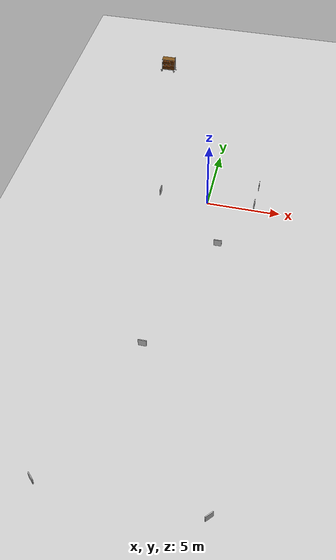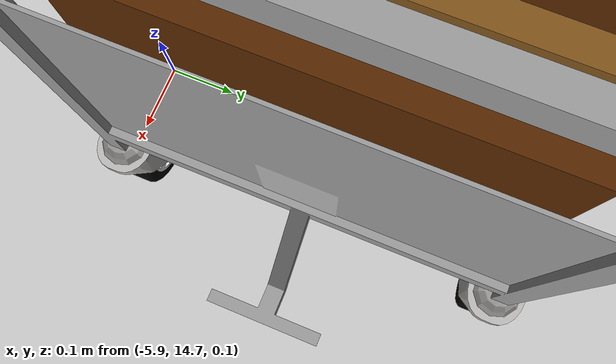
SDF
<sdf version="1.9">
 <world name="empty">
  <physics name="1ms" type="ode">
   <max_step_size>0.01</max_step_size>
   <real_time_factor>1.0</real_time_factor>
   <ode><solver><type>world</type></solver></ode>
  </physics>
  <plugin filename="ignition-gazebo-physics-system" name="gz::sim::systems::Physics"/>
  <plugin filename="ignition-gazebo-user-commands-system" name="gz::sim::systems::UserCommands"/>
  <plugin filename="ignition-gazebo-scene-broadcaster-system" name="gz::sim::systems::SceneBroadcaster"/>
  <plugin filename="ignition-gazebo-contact-system" name="gz::sim::systems::Contact"/>
  <light type="directional" name="sun">
   <cast_shadows>0</cast_shadows>
   <pose>-5 -3 10 0 0 0</pose>
   <diffuse>1 1 1 1</diffuse>
   <specular>1 1 1 1</specular>
   <direction>0 0 -1</direction>
  </light>
  <model name="sueloWorld2">
   <static>true</static>
   <link name="link">
    <collision name="collision">
     <geometry><plane><normal>0 0 1</normal><size>100 100</size></plane></geometry>
     <surface><contact><ode><kp>0</kp><kd>0</kd></ode></contact></surface>
    </collision>
    <visual name="visual">
     <geometry><plane><normal>0 0 1</normal><size>100 100</size></plane></geometry>
     <material>
      <ambient>0.8 0.8 0.8 1</ambient>
      <diffuse>0.8 0.8 0.8 1</diffuse>
      <specular>0.8 0.8 0.8 1</specular>
     </material>
    </visual>
   </link>
  </model>
  <include>
   <uri>https://fuel.ignitionrobotics.org/1.0/MovAi/models/cart_model_2</uri>
   <name>cart1</name>
   <pose>-5.73 15 0.25 0 -0 0</pose>
  </include>
  <model name="CHECKERBOARD">
   <static>true</static>
   <link name="checkerboard">
    <visual name="visual">
     <geometry>
      <mesh>
       <uri>file:///home/duser/carrolac-ros2ws/src/computer_vision/camera_calibrator/checkerboard.dae</uri>
      </mesh>
     </geometry>
    </visual>
   </link>
   <pose>3.25 2.25 0.25 0 0 3.14</pose>
  </model>
  <model name="AU0000">
   <static>true</static>
   <link name="box">
    <visual name="visual">
     <geometry>
      <mesh><uri>file:///home/duser/carrolac-ros2ws/src/computer_vision/aruco_markers/meshes/AU0000.dae</uri></mesh>
     </geometry>
    </visual>
   </link>
   <pose>3.25 -0.15 0.75 0 0 3.14</pose>
  </model>
  <model name="AU0002">
   <static>true</static>
   <link name="box">
    <visual name="visual">
     <geometry>
      <mesh><uri>file:///home/duser/carrolac-ros2ws/src/computer_vision/aruco_markers/meshes/AU0002.dae</uri></mesh>
     </geometry>
    </visual>
   </link>
   <pose>1.50 -4.25 0.75 0 0 1.57</pose>
  </model>
  <model name="AU0004">
   <static>true</static>
   <link name="box">
    <visual name="visual">
     <geometry>
      <mesh><uri>file:///home/duser/carrolac-ros2ws/src/computer_vision/aruco_markers/meshes/AU0004.dae</uri></mesh>
     </geometry>
    </visual>
   </link>
   <pose>-1.25 -13.00 0.75 0 0 1.57</pose>
  </model>
  <model name="AU0006">
   <static>true</static>
   <link name="box">
    <visual name="visual">
     <geometry>
      <mesh><uri>file:///home/duser/carrolac-ros2ws/src/computer_vision/aruco_markers/meshes/AU0006.dae</uri></mesh>
     </geometry>
    </visual>
   </link>
   <pose>-4.6 -22.30 0.75 0 0 0.8</pose>
  </model>
  <model name="AU0008">
   <static>true</static>
   <link name="box">
    <visual name="visual">
     <geometry>
      <mesh><uri>file:///home/duser/carrolac-ros2ws/src/computer_vision/aruco_markers/meshes/AU0008.dae</uri></mesh>
     </geometry>
    </visual>
   </link>
   <pose>4.5 -22.30 0.75 0 0 2.4</pose>
  </model>
  <model name="AU0010">
   <static>true</static>
   <link name="box">
    <visual name="visual">
     <geometry>
      <mesh><uri>file:///home/duser/carrolac-ros2ws/src/computer_vision/aruco_markers/meshes/AU0010.dae</uri></mesh>
     </geometry>
    </visual>
   </link>
   <pose>-3.25 -0.15 0.75 0 0 0</pose>
  </model>
 </world>
</sdf>

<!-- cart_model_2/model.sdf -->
<sdf version="1.7">
    <model name="cart_model2">
        <pose>0 0 0 0 0 0</pose>
        <!-- BASE_LINK FRAME -->
        <link name="base_link">
            <pose>0 0 0 0 0 -1.57079632679</pose>
            <inertial>
                <pose>0 -0.5 0.5 0 0 0</pose>
                <mass>30</mass>
                <inertia>
                    <ixx>0.1</ixx>
                    <ixy>0</ixy>
                    <ixz>0</ixz>
                    <iyy>0.1</iyy>
                    <iyz>0</iyz>
                    <izz>0.1</izz>
                </inertia>
            </inertial>
            <collision name="base_link_collision">
                <pose>0 0 0 0 0 0</pose>
                <geometry>
                    <mesh>
                        <scale>1 1 1</scale>
                        <uri>meshes/cart_base_collision.stl</uri>
                    </mesh>
                </geometry>
                <max_contacts>5</max_contacts>
                <surface>
                    <contact>
                        <ode>
                            <soft_cfm>1.0</soft_cfm>
                            <soft_erp>0.4</soft_erp>
                            <kp>1000000.0</kp>
                            <kd>1</kd>
                            <min_depth>0.01</min_depth>
                        </ode>
                    </contact>
                    <friction>
                        <ode>
                            <mu>1.16</mu>
                            <mu2>1.16</mu2>
                        </ode>
                    </friction>
                </surface>
            </collision>
            <visual name="base_link_visual">
                <pose>0 0 0 0 0 0</pose>
                <geometry>
                    <mesh>
                        <scale>1 1 1</scale>
                        <uri>meshes/cart_base.dae</uri>
                        <submesh>
                            <name>base_metal</name>
                            <center>false</center>
                        </submesh>
                    </mesh>
                </geometry>
            </visual>
            <visual name="base_shelf_visual">
                <pose>0 0 0 0 0 0</pose>
                <geometry>
                    <mesh>
                        <scale>1 1 1</scale>
                        <uri>meshes/cart_base.dae</uri>
                        <submesh>
                            <name>base_shelf</name>
                            <center>false</center>
                        </submesh>
                    </mesh>
                </geometry>
            </visual>
            <visual name="back_left_sup_visual">
                <pose>-0.245 -1.005 0.05 0 0 0</pose>
                <geometry>
                    <mesh>
                        <scale>1 1 1</scale>
                        <uri>meshes/sup_wheels.dae</uri>
                    </mesh>
                </geometry>
            </visual>
            <visual name="back_right_sup_visual">
                <pose>0.245 -1.005 0.05 0 0 0</pose>
                <geometry>
                    <mesh>
                        <scale>1 1 1</scale>
                        <uri>meshes/sup_wheels.dae</uri>
                    </mesh>
                </geometry>
            </visual>
            <visual name="tag_visual">
                <pose>0 0 0 0 0 0</pose>
                <geometry>
                    <mesh>
                        <scale>1 1 1</scale>
                        <uri>meshes/cart_base.dae</uri>
                        <submesh>
                            <name>tag</name>
                            <center>false</center>
                        </submesh>
                    </mesh>
                </geometry>
                <material>
                    <diffuse>1.0 1.0 1.0</diffuse>
                    <specular>1.0 1.0 1.0</specular>
                    <pbr>
                        <metal>
                            <albedo_map>meshes/cart_tag.png</albedo_map>
                        </metal>
                    </pbr>
                </material>
            </visual>
        </link>
        <!-- Wheels -->
        <!-- Back Left -->
        <link name="back_left">
            <pose>-1.04 -0.245 -0.05 0 0 1.570796327</pose>
            <inertial>
                <pose>0 0 0 0 1.570796327 0</pose>
                <mass>0.01</mass>
                <inertia>
                    <ixx>0.0000175</ixx>
                    <ixy>0</ixy>
                    <ixz>0</ixz>
                    <iyy>0.0000175</iyy>
                    <iyz>0</iyz>
                    <izz>0.00003125</izz>
                </inertia>
            </inertial>
            <collision name="back_left_collision">
                <pose>0 0 0 0 1.570796327 0</pose>
                <geometry>
                    <cylinder>
                        <length>0.03</length>
                        <radius>0.06</radius>
                    </cylinder>
                </geometry>
                <max_contacts>5</max_contacts>
                <surface>
                    <contact>
                        <ode>
                            <soft_cfm>1.0</soft_cfm>
                            <soft_erp>0.4</soft_erp>
                            <kp>1000000.0</kp>
                            <kd>1</kd>
                            <min_depth>0.01</min_depth>
                        </ode>
                    </contact>
                    <friction>
                        <ode>
                            <mu>1.16</mu>
                            <mu2>1.16</mu2>
                        </ode>
                    </friction>
                </surface>
            </collision>
            <visual name="back_left_visual">
                <pose>0 0 0 0 0 0</pose>
                <geometry>
                    <mesh>
                        <scale>1 1 1</scale>
                        <uri>meshes/wheel.dae</uri>
                    </mesh>
                </geometry>
            </visual>
        </link>
        <joint name="back_left_joint" type="revolute">
            <child>back_left</child>
            <parent>base_link</parent>
            <axis>
                <xyz>1 0 0</xyz>
                <dynamics>
                    <friction>0.5</friction>
                    <damping>0.0001</damping>
                </dynamics>
            </axis>
        </joint>
        <!-- Back Right -->
        <link name="back_right">
            <pose>-1.04 0.245 -0.05 0 0 1.570796327</pose>
            <inertial>
                <pose>0 0 0 0 1.570796327 0</pose>
                <mass>0.01</mass>
                <inertia>
                    <ixx>0.0000175</ixx>
                    <ixy>0</ixy>
                    <ixz>0</ixz>
                    <iyy>0.0000175</iyy>
                    <iyz>0</iyz>
                    <izz>0.00003125</izz>
                </inertia>
            </inertial>
            <collision name="back_right_collision">
                <pose>0 0 0 0 1.570796327 0</pose>
                <geometry>
                    <cylinder>
                        <length>0.03</length>
                        <radius>0.06</radius>
                    </cylinder>
                </geometry>
                <max_contacts>5</max_contacts>
                <surface>
                    <contact>
                        <ode>
                            <soft_cfm>1.0</soft_cfm>
                            <soft_erp>0.4</soft_erp>
                            <kp>1000000.0</kp>
                            <kd>1</kd>
                            <min_depth>0.01</min_depth>
                        </ode>
                    </contact>
                    <friction>
                        <ode>
                            <mu>1.16</mu>
                            <mu2>1.16</mu2>
                        </ode>
                    </friction>
                </surface>
            </collision>
            <visual name="back_right_visual">
                <pose>0 0 0 0 0 0</pose>
                <geometry>
                    <mesh>
                        <scale>1 1 1</scale>
                        <uri>meshes/wheel.dae</uri>
                    </mesh>
                </geometry>
            </visual>
        </link>
        <joint name="back_right_joint" type="revolute">
            <child>back_right</child>
            <parent>base_link</parent>
            <axis>
                <xyz>1 0 0</xyz>
                <dynamics>
                    <friction>0.5</friction>
                    <damping>0.0001</damping>
                </dynamics>
            </axis>
        </joint>
        <!-- Front Left -->
        <link name="wheel_sup_front_left">
            <pose>0 -0.245 0.05 0 0 1.570796327</pose>
            <inertial>
                <pose>0 0 0 0 0 0</pose>
                <mass>0.01</mass>
                <inertia>
                    <ixx>0.0000175</ixx>
                    <ixy>0</ixy>
                    <ixz>0</ixz>
                    <iyy>0.0000175</iyy>
                    <iyz>0</iyz>
                    <izz>0.0000175</izz>
                </inertia>
            </inertial>
            <visual name="wheel_sup_front_left_visual">
                <pose>0 0 0 0 0 3.14159265359</pose>
                <geometry>
                    <mesh>
                        <scale>1 1 1</scale>
                        <uri>meshes/sup_wheels.dae</uri>
                    </mesh>
                </geometry>
            </visual>
        </link>
        <joint name="wheel_sup_front_left_joint" type="revolute">
            <child>wheel_sup_front_left</child>
            <parent>base_link</parent>
            <axis>
                <xyz>0 0 1</xyz>
                <dynamics>
                    <damping>0.001</damping>
                </dynamics>
            </axis>
        </joint>
        <link name="front_left">
            <pose>-0.04 -0.245 -0.05 0 0 1.570796327</pose>
            <inertial>
                <pose>0 0 0 0 1.570796327 0</pose>
                <mass>0.01</mass>
                <inertia>
                    <ixx>0.0000175</ixx>
                    <ixy>0</ixy>
                    <ixz>0</ixz>
                    <iyy>0.0000175</iyy>
                    <iyz>0</iyz>
                    <izz>0.00003125</izz>
                </inertia>
            </inertial>
            <collision name="front_left_collision">
                <pose>0 0 0 0 1.570796327 0</pose>
                <geometry>
                    <cylinder>
                        <length>0.03</length>
                        <radius>0.06</radius>
                    </cylinder>
                </geometry>
                <max_contacts>5</max_contacts>
                <surface>
                    <contact>
                        <ode>
                            <soft_cfm>1.0</soft_cfm>
                            <soft_erp>0.4</soft_erp>
                            <kp>1000000.0</kp>
                            <kd>1</kd>
                            <min_depth>0.01</min_depth>
                        </ode>
                    </contact>
                    <friction>
                        <ode>
                            <mu>1.16</mu>
                            <mu2>1.16</mu2>
                        </ode>
                    </friction>
                </surface>
            </collision>
            <visual name="front_left_visual">
                <pose>0 0 0 0 0 0</pose>
                <geometry>
                    <mesh>
                        <scale>1 1 1</scale>
                        <uri>meshes/wheel.dae</uri>
                    </mesh>
                </geometry>
            </visual>
        </link>
        <joint name="front_left_joint" type="revolute">
            <child>front_left</child>
            <parent>wheel_sup_front_left</parent>
            <axis>
                <xyz>1 0 0</xyz>
                <dynamics>
                    <friction>0.5</friction>
                    <damping>0.0001</damping>
                </dynamics>
            </axis>
        </joint>
        <!-- Front Right -->
        <link name="wheel_sup_front_right">
            <pose>0 0.245 0.05 0 0 1.570796327</pose>
            <inertial>
                <pose>0 0 0 0 0 0</pose>
                <mass>0.01</mass>
                <inertia>
                    <ixx>0.0000175</ixx>
                    <ixy>0</ixy>
                    <ixz>0</ixz>
                    <iyy>0.0000175</iyy>
                    <iyz>0</iyz>
                    <izz>0.0000175</izz>
                </inertia>
            </inertial>
            <visual name="wheel_sup_front_right_visual">
                <pose>0 0 0 0 0 3.14159265359</pose>
                <geometry>
                    <mesh>
                        <scale>1 1 1</scale>
                        <uri>meshes/sup_wheels.dae</uri>
                    </mesh>
                </geometry>
            </visual>
        </link>
        <joint name="wheel_sup_front_right_joint" type="revolute">
            <child>wheel_sup_front_right</child>
            <parent>base_link</parent>
            <axis>
                <xyz>0 0 1</xyz>
                <dynamics>
                    <damping>0.001</damping>
                </dynamics>
            </axis>
        </joint>
        <link name="front_right">
            <pose>-0.04 0.245 -0.05 0 0 1.570796327</pose>
            <inertial>
                <pose>0 0 0 0 1.570796327 0</pose>
                <mass>0.01</mass>
                <inertia>
                    <ixx>0.0000175</ixx>
                    <ixy>0</ixy>
                    <ixz>0</ixz>
                    <iyy>0.0000175</iyy>
                    <iyz>0</iyz>
                    <izz>0.00003125</izz>
                </inertia>
            </inertial>
            <collision name="front_right_collision">
                <pose>0 0 0 0 1.570796327 0</pose>
                <geometry>
                    <cylinder>
                        <length>0.03</length>
                        <radius>0.06</radius>
                    </cylinder>
                </geometry>
                <max_contacts>5</max_contacts>
                <surface>
                    <contact>
                        <ode>
                            <soft_cfm>1.0</soft_cfm>
                            <soft_erp>0.4</soft_erp>
                            <kp>1000000.0</kp>
                            <kd>1</kd>
                            <min_depth>0.01</min_depth>
                        </ode>
                    </contact>
                    <friction>
                        <ode>
                            <mu>1.16</mu>
                            <mu2>1.16</mu2>
                        </ode>
                    </friction>
                </surface>
            </collision>
            <visual name="front_right_visual">
                <pose>0 0 0 0 0 0</pose>
                <geometry>
                    <mesh>
                        <scale>1 1 1</scale>
                        <uri>meshes/wheel.dae</uri>
                    </mesh>
                </geometry>
            </visual>
        </link>
        <joint name="front_right_joint" type="revolute">
            <child>front_right</child>
            <parent>wheel_sup_front_right</parent>
            <axis>
                <xyz>1 0 0</xyz>
                <dynamics>
                    <friction>0.5</friction>
                    <damping>0.0001</damping>
                </dynamics>
            </axis>
        </joint>
    </model>
</sdf>
